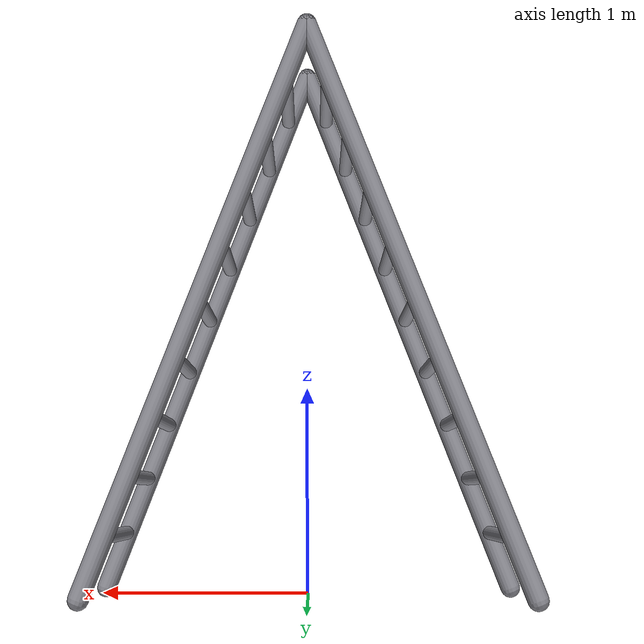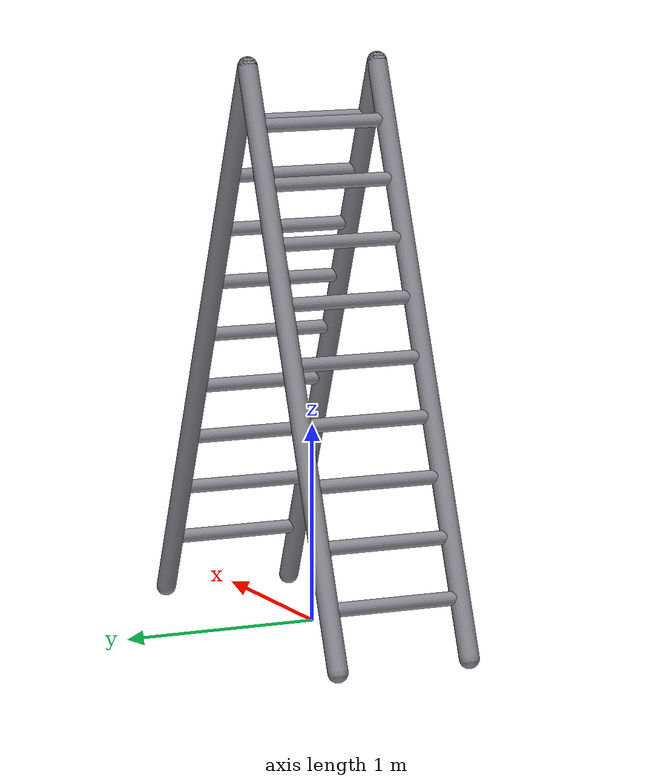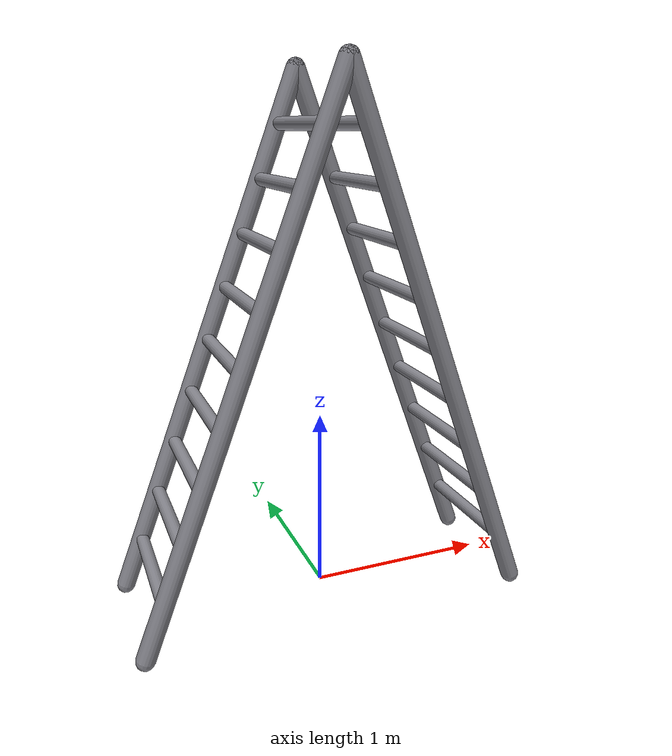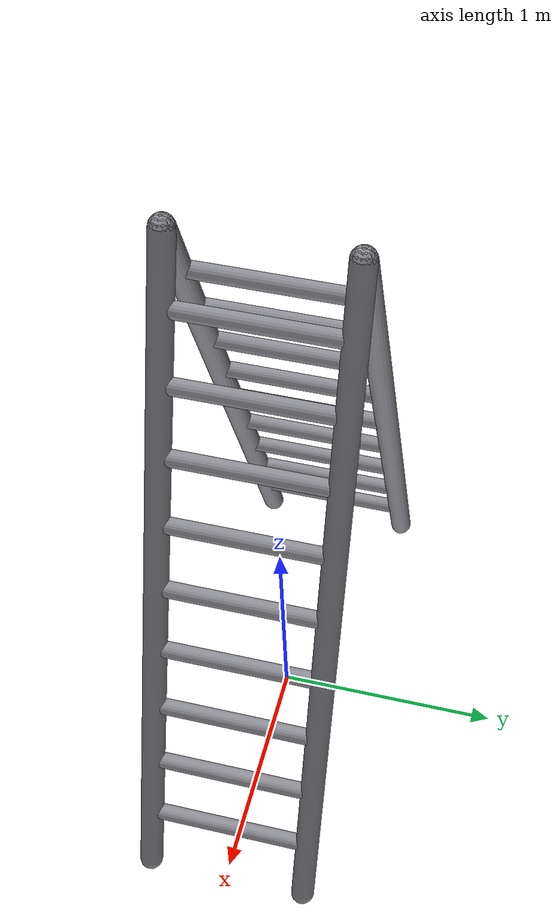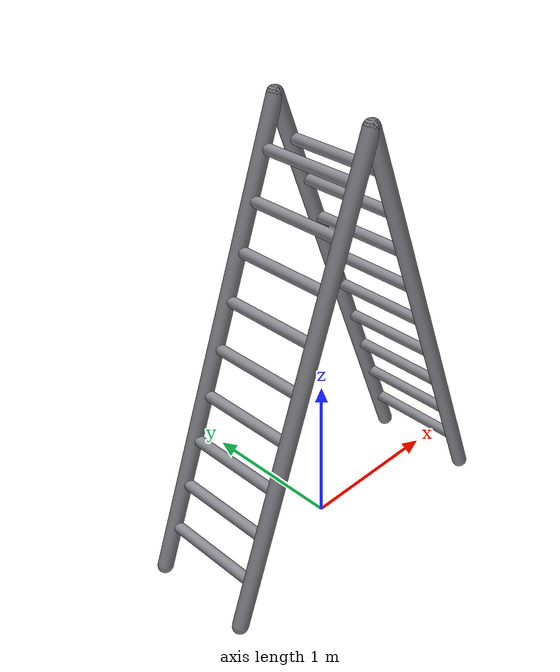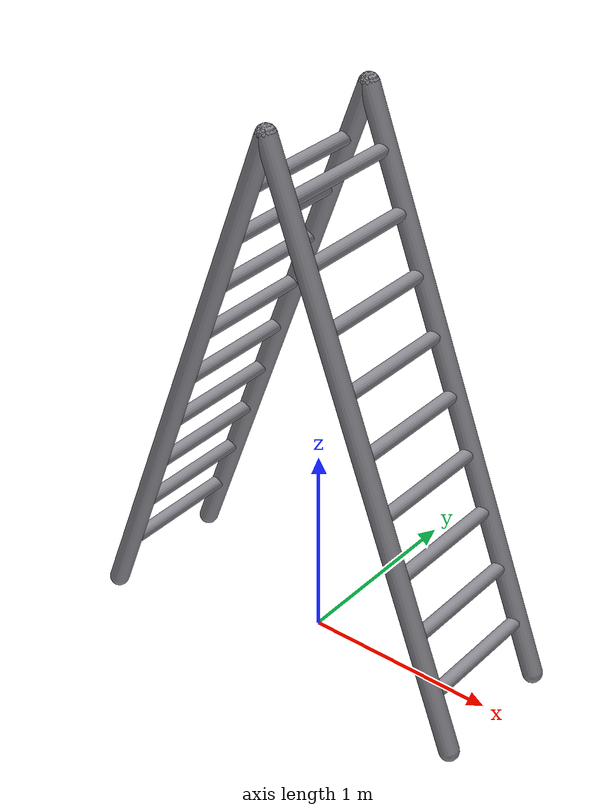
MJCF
<?xml version="1.0" encoding="UTF-8"?>
<mujoco model="a_frame_double_ladder">
  <compiler angle="degree"/>

  <default>
    <geom friction="1.2 0.01 0.001"
          condim="4"
          solref="0.005 1"
          solimp="0.95 0.99 0.001"
          rgba="0.55 0.55 0.58 1"/>
  </default>

  <worldbody>
    <!-- Left inclined ladder. -->

    <geom name="left_ladder_rail_1"
          type="capsule"
          fromto="-1.050000 -0.350000 0.000000  0.000000 -0.350000 2.800000"
          size="0.050"/>

    <geom name="left_ladder_rail_2"
          type="capsule"
          fromto="-1.050000 0.350000 0.000000  0.000000 0.350000 2.800000"
          size="0.050"/>

    <geom name="left_ladder_rung_01"
          type="capsule"
          fromto="-0.945000 -0.350000 0.280000  -0.945000 0.350000 0.280000"
          size="0.035"/>

    <site name="left_ladder_rung_01_grip"
          type="capsule"
          fromto="-0.945000 -0.350000 0.280000  -0.945000 0.350000 0.280000"
          size="0.075"
          group="3"
          rgba="0.15 0.95 0.25 0.25"/>

    <geom name="left_ladder_rung_02"
          type="capsule"
          fromto="-0.840000 -0.350000 0.560000  -0.840000 0.350000 0.560000"
          size="0.035"/>

    <site name="left_ladder_rung_02_grip"
          type="capsule"
          fromto="-0.840000 -0.350000 0.560000  -0.840000 0.350000 0.560000"
          size="0.075"
          group="3"
          rgba="0.15 0.95 0.25 0.25"/>

    <geom name="left_ladder_rung_03"
          type="capsule"
          fromto="-0.735000 -0.350000 0.840000  -0.735000 0.350000 0.840000"
          size="0.035"/>

    <site name="left_ladder_rung_03_grip"
          type="capsule"
          fromto="-0.735000 -0.350000 0.840000  -0.735000 0.350000 0.840000"
          size="0.075"
          group="3"
          rgba="0.15 0.95 0.25 0.25"/>

    <geom name="left_ladder_rung_04"
          type="capsule"
          fromto="-0.630000 -0.350000 1.120000  -0.630000 0.350000 1.120000"
          size="0.035"/>

    <site name="left_ladder_rung_04_grip"
          type="capsule"
          fromto="-0.630000 -0.350000 1.120000  -0.630000 0.350000 1.120000"
          size="0.075"
          group="3"
          rgba="0.15 0.95 0.25 0.25"/>

    <geom name="left_ladder_rung_05"
          type="capsule"
          fromto="-0.525000 -0.350000 1.400000  -0.525000 0.350000 1.400000"
          size="0.035"/>

    <site name="left_ladder_rung_05_grip"
          type="capsule"
          fromto="-0.525000 -0.350000 1.400000  -0.525000 0.350000 1.400000"
          size="0.075"
          group="3"
          rgba="0.15 0.95 0.25 0.25"/>

    <geom name="left_ladder_rung_06"
          type="capsule"
          fromto="-0.420000 -0.350000 1.680000  -0.420000 0.350000 1.680000"
          size="0.035"/>

    <site name="left_ladder_rung_06_grip"
          type="capsule"
          fromto="-0.420000 -0.350000 1.680000  -0.420000 0.350000 1.680000"
          size="0.075"
          group="3"
          rgba="0.15 0.95 0.25 0.25"/>

    <geom name="left_ladder_rung_07"
          type="capsule"
          fromto="-0.315000 -0.350000 1.960000  -0.315000 0.350000 1.960000"
          size="0.035"/>

    <site name="left_ladder_rung_07_grip"
          type="capsule"
          fromto="-0.315000 -0.350000 1.960000  -0.315000 0.350000 1.960000"
          size="0.075"
          group="3"
          rgba="0.15 0.95 0.25 0.25"/>

    <geom name="left_ladder_rung_08"
          type="capsule"
          fromto="-0.210000 -0.350000 2.240000  -0.210000 0.350000 2.240000"
          size="0.035"/>

    <site name="left_ladder_rung_08_grip"
          type="capsule"
          fromto="-0.210000 -0.350000 2.240000  -0.210000 0.350000 2.240000"
          size="0.075"
          group="3"
          rgba="0.15 0.95 0.25 0.25"/>

    <geom name="left_ladder_rung_09"
          type="capsule"
          fromto="-0.105000 -0.350000 2.520000  -0.105000 0.350000 2.520000"
          size="0.035"/>

    <site name="left_ladder_rung_09_grip"
          type="capsule"
          fromto="-0.105000 -0.350000 2.520000  -0.105000 0.350000 2.520000"
          size="0.075"
          group="3"
          rgba="0.15 0.95 0.25 0.25"/>

    <!-- Right inclined ladder. -->

    <geom name="right_ladder_rail_1"
          type="capsule"
          fromto="1.050000 -0.350000 0.000000  0.000000 -0.350000 2.800000"
          size="0.050"/>

    <geom name="right_ladder_rail_2"
          type="capsule"
          fromto="1.050000 0.350000 0.000000  0.000000 0.350000 2.800000"
          size="0.050"/>

    <geom name="right_ladder_rung_01"
          type="capsule"
          fromto="0.945000 -0.350000 0.280000  0.945000 0.350000 0.280000"
          size="0.035"/>

    <site name="right_ladder_rung_01_grip"
          type="capsule"
          fromto="0.945000 -0.350000 0.280000  0.945000 0.350000 0.280000"
          size="0.075"
          group="3"
          rgba="0.15 0.95 0.25 0.25"/>

    <geom name="right_ladder_rung_02"
          type="capsule"
          fromto="0.840000 -0.350000 0.560000  0.840000 0.350000 0.560000"
          size="0.035"/>

    <site name="right_ladder_rung_02_grip"
          type="capsule"
          fromto="0.840000 -0.350000 0.560000  0.840000 0.350000 0.560000"
          size="0.075"
          group="3"
          rgba="0.15 0.95 0.25 0.25"/>

    <geom name="right_ladder_rung_03"
          type="capsule"
          fromto="0.735000 -0.350000 0.840000  0.735000 0.350000 0.840000"
          size="0.035"/>

    <site name="right_ladder_rung_03_grip"
          type="capsule"
          fromto="0.735000 -0.350000 0.840000  0.735000 0.350000 0.840000"
          size="0.075"
          group="3"
          rgba="0.15 0.95 0.25 0.25"/>

    <geom name="right_ladder_rung_04"
          type="capsule"
          fromto="0.630000 -0.350000 1.120000  0.630000 0.350000 1.120000"
          size="0.035"/>

    <site name="right_ladder_rung_04_grip"
          type="capsule"
          fromto="0.630000 -0.350000 1.120000  0.630000 0.350000 1.120000"
          size="0.075"
          group="3"
          rgba="0.15 0.95 0.25 0.25"/>

    <geom name="right_ladder_rung_05"
          type="capsule"
          fromto="0.525000 -0.350000 1.400000  0.525000 0.350000 1.400000"
          size="0.035"/>

    <site name="right_ladder_rung_05_grip"
          type="capsule"
          fromto="0.525000 -0.350000 1.400000  0.525000 0.350000 1.400000"
          size="0.075"
          group="3"
          rgba="0.15 0.95 0.25 0.25"/>

    <geom name="right_ladder_rung_06"
          type="capsule"
          fromto="0.420000 -0.350000 1.680000  0.420000 0.350000 1.680000"
          size="0.035"/>

    <site name="right_ladder_rung_06_grip"
          type="capsule"
          fromto="0.420000 -0.350000 1.680000  0.420000 0.350000 1.680000"
          size="0.075"
          group="3"
          rgba="0.15 0.95 0.25 0.25"/>

    <geom name="right_ladder_rung_07"
          type="capsule"
          fromto="0.315000 -0.350000 1.960000  0.315000 0.350000 1.960000"
          size="0.035"/>

    <site name="right_ladder_rung_07_grip"
          type="capsule"
          fromto="0.315000 -0.350000 1.960000  0.315000 0.350000 1.960000"
          size="0.075"
          group="3"
          rgba="0.15 0.95 0.25 0.25"/>

    <geom name="right_ladder_rung_08"
          type="capsule"
          fromto="0.210000 -0.350000 2.240000  0.210000 0.350000 2.240000"
          size="0.035"/>

    <site name="right_ladder_rung_08_grip"
          type="capsule"
          fromto="0.210000 -0.350000 2.240000  0.210000 0.350000 2.240000"
          size="0.075"
          group="3"
          rgba="0.15 0.95 0.25 0.25"/>

    <geom name="right_ladder_rung_09"
          type="capsule"
          fromto="0.105000 -0.350000 2.520000  0.105000 0.350000 2.520000"
          size="0.035"/>

    <site name="right_ladder_rung_09_grip"
          type="capsule"
          fromto="0.105000 -0.350000 2.520000  0.105000 0.350000 2.520000"
          size="0.075"
          group="3"
          rgba="0.15 0.95 0.25 0.25"/>
  </worldbody>
</mujoco>
